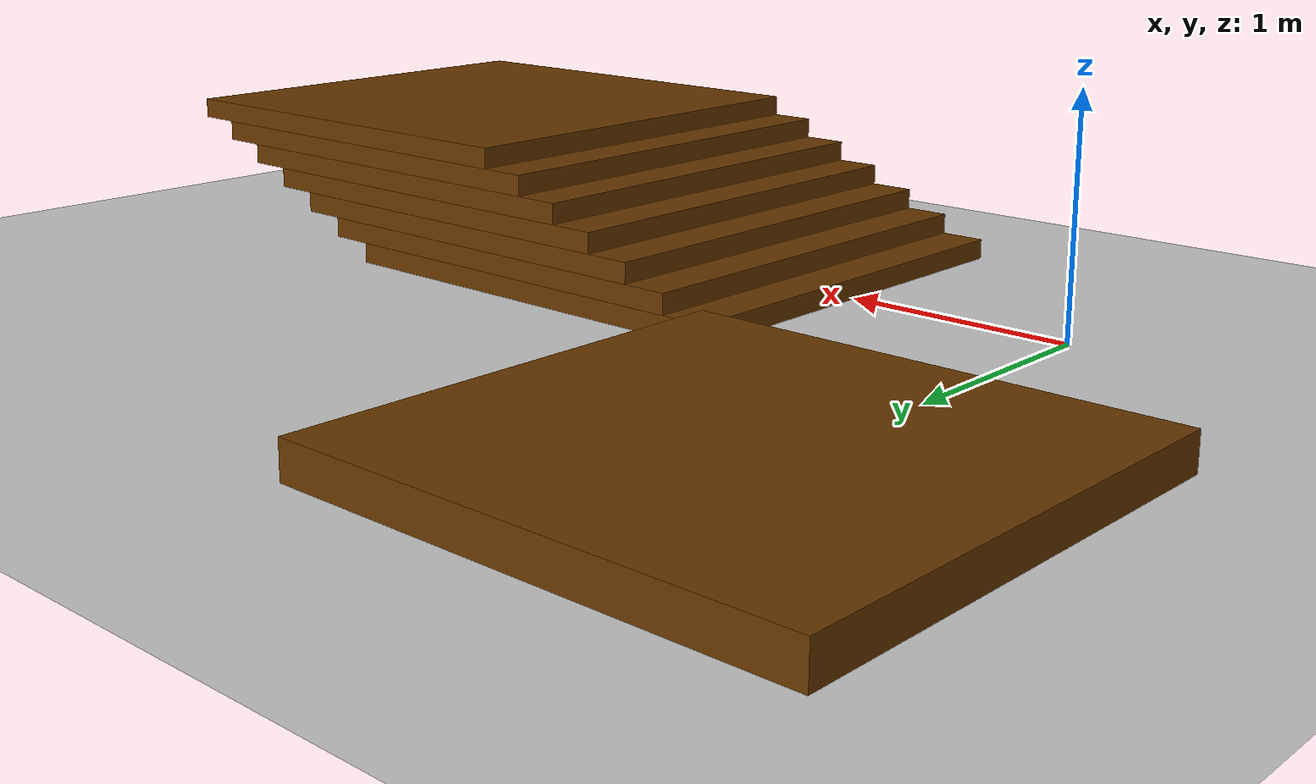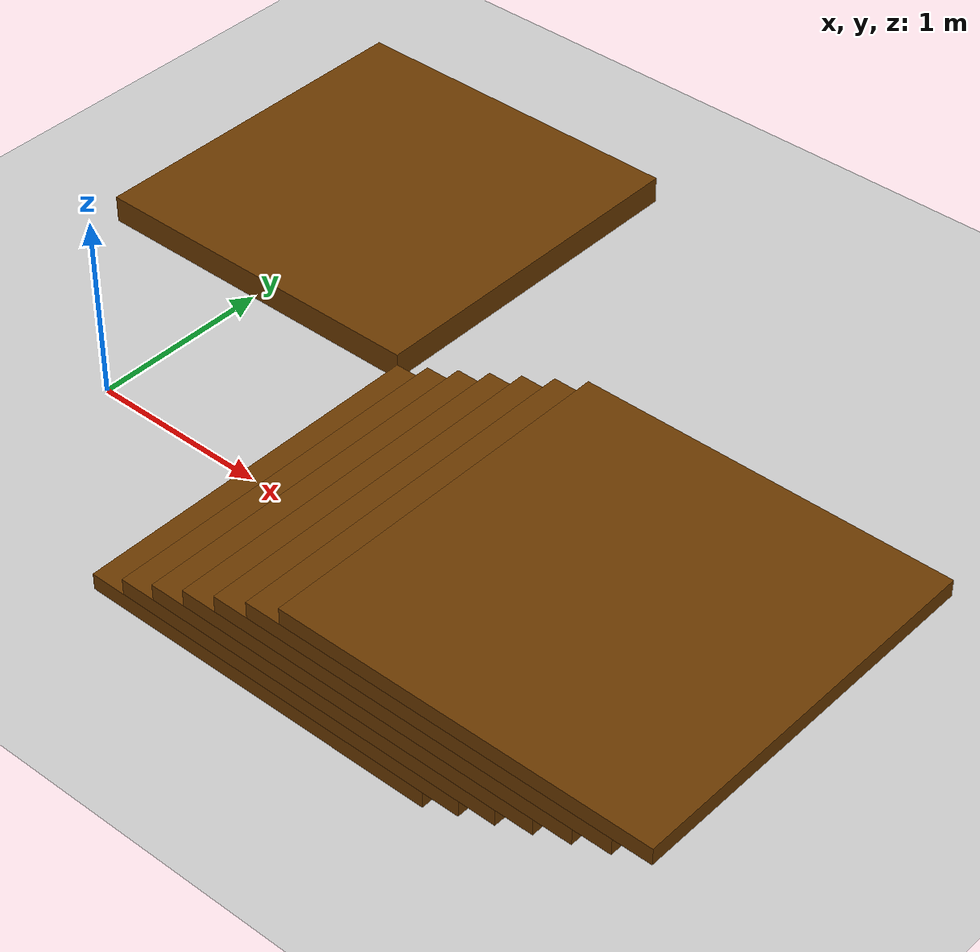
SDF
<?xml version="1.0" ?>
<sdf version="1.5">
    <world name="default">

        <physics type="ode">
        <max_step_size>0.00025</max_step_size>
        <real_time_factor>1.0</real_time_factor>
        <real_time_update_rate>10000</real_time_update_rate>
        <gravity>0 0 -9.81</gravity>
            <ode>
                <solver>
                <type>quick</type>
                <iters>80</iters>
                <sor>1.3</sor>
                </solver>
                <constraints>
                <cfm>0.0</cfm>
                <erp>0.2</erp>
                <contact_max_correcting_vel>0.1</contact_max_correcting_vel>
                <contact_surface_layer>0.0001</contact_surface_layer>
                </constraints>
            </ode>
        </physics>

        <scene>
        <sky>
            <clouds>
                <speed>12</speed>
            </clouds>
        </sky>
        </scene>
        <!-- A global light source -->
        <include>
            <uri>model://sun</uri>
        </include>
        <!-- A ground plane -->
        <include>
            <uri>model://ground_plane</uri>
        </include>
        <!-- environment blocks, obstacles or stairs -->
        <model name="static_environment">
        <static>true</static>

            <link name="base">
                <pose>0 2 0.075 0 0 0</pose>
                <collision name="base_collision">
                    <geometry>
                        <box>
                            <size>2 2 0.15</size>
                        </box>
                    </geometry>
                </collision>
                <visual name="base_visual">
                    <geometry>
                        <box>
                            <size>2 2 0.15</size>
                        </box>
                    </geometry>
                    <material>
                        <ambient>0.2 0.2 0.2 1.0</ambient>
                        <diffuse>.421 0.225 0.0 1.0</diffuse>
                    </material>
                </visual>
            </link>

            <link name="floor">
                <pose>2 0 0.045 0 0 0</pose>
                <collision name="floor_collision">
                    <geometry>
                        <box>
                            <size>2 2 0.09</size>
                        </box>
                    </geometry>
                </collision>
                <visual name="floor_visual">
                    <geometry>
                        <box>
                            <size>2 2 0.09</size>
                        </box>
                    </geometry>
                    <material>
                        <ambient>0.2 0.2 0.2 1.0</ambient>
                        <diffuse>.421 0.225 0.0 1.0</diffuse>
                    </material>
                </visual>
            </link>

            <link name="floor1">
                <pose>2.2 0 0.135 0 0 0</pose>
                <collision name="floor1_collision">
                    <geometry>
                        <box>
                            <size>2 2 0.09</size>
                        </box>
                    </geometry>
                </collision>
                <visual name="floor1_visual">
                    <geometry>
                        <box>
                            <size>2 2 0.09</size>
                        </box>
                    </geometry>
                    <material>
                        <ambient>0.2 0.2 0.2 1.0</ambient>
                        <diffuse>.421 0.225 0.0 1.0</diffuse>
                    </material>
                </visual>
            </link>

            <link name="floor2">
                <pose>2.4 0 0.225 0 0 0</pose>
                <collision name="floor2_collision">
                    <geometry>
                        <box>
                            <size>2 2 0.09</size>
                        </box>
                    </geometry>
                </collision>
                <visual name="floor2_visual">
                    <geometry>
                        <box>
                            <size>2 2 0.09</size>
                        </box>
                    </geometry>
                    <material>
                        <ambient>0.2 0.2 0.2 1.0</ambient>
                        <diffuse>.421 0.225 0.0 1.0</diffuse>
                    </material>
                </visual>
            </link>

            <link name="floor3">
                <pose>2.6 0 0.315 0 0 0</pose>
                <collision name="floor3_collision">
                    <geometry>
                        <box>
                            <size>2 2 0.09</size>
                        </box>
                    </geometry>
                </collision>
                <visual name="floor3_visual">
                    <geometry>
                        <box>
                            <size>2 2 0.09</size>
                        </box>
                    </geometry>
                    <material>
                        <ambient>0.2 0.2 0.2 1.0</ambient>
                        <diffuse>.421 0.225 0.0 1.0</diffuse>
                    </material>
                </visual>
            </link>

            <link name="floor4">
                <pose>2.8 0 0.405 0 0 0</pose>
                <collision name="floor4_collision">
                    <geometry>
                        <box>
                            <size>2 2 0.09</size>
                        </box>
                    </geometry>
                </collision>
                <visual name="floor4_visual">
                    <geometry>
                        <box>
                            <size>2 2 0.09</size>
                        </box>
                    </geometry>
                    <material>
                        <ambient>0.2 0.2 0.2 1.0</ambient>
                        <diffuse>.421 0.225 0.0 1.0</diffuse>
                    </material>
                </visual>
            </link>

            <link name="floor5">
                <pose>3.0 0 0.495 0 0 0</pose>
                <collision name="floor5_collision">
                    <geometry>
                        <box>
                            <size>2 2 0.09</size>
                        </box>
                    </geometry>
                </collision>
                <visual name="floor5_visual">
                    <geometry>
                        <box>
                            <size>2 2 0.09</size>
                        </box>
                    </geometry>
                    <material>
                        <ambient>0.2 0.2 0.2 1.0</ambient>
                        <diffuse>.421 0.225 0.0 1.0</diffuse>
                    </material>
                </visual>
            </link>

            <link name="floor6">
                <pose>3.2 0 0.585 0 0 0</pose>
                <collision name="floor6_collision">
                    <geometry>
                        <box>
                            <size>2 2 0.09</size>
                        </box>
                    </geometry>
                </collision>
                <visual name="floor6_visual">
                    <geometry>
                        <box>
                            <size>2 2 0.09</size>
                        </box>
                    </geometry>
                    <material>
                        <ambient>0.2 0.2 0.2 1.0</ambient>
                        <diffuse>.421 0.225 0.0 1.0</diffuse>
                    </material>
                </visual>
            </link>

        </model>

    </world>
</sdf>
